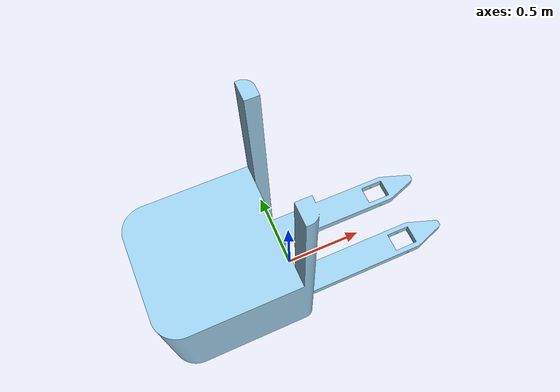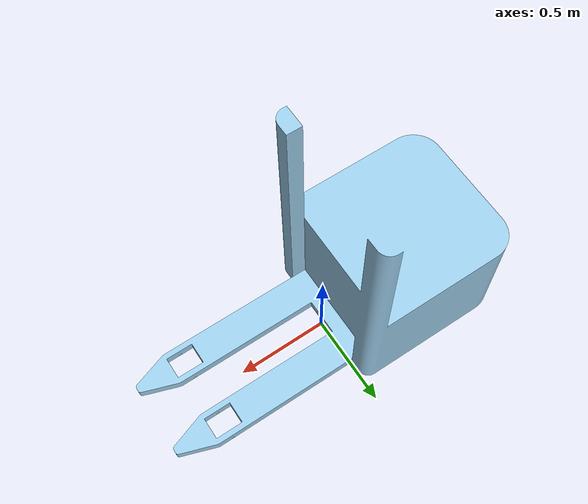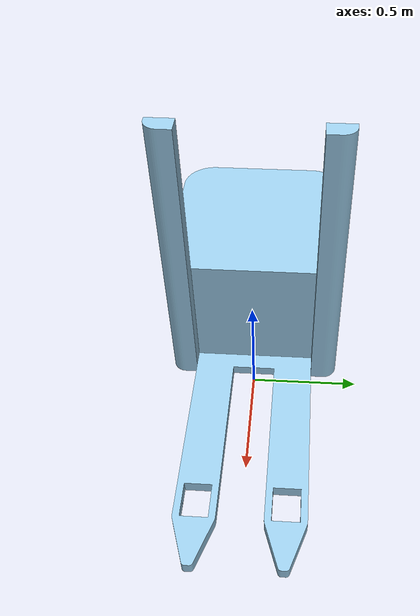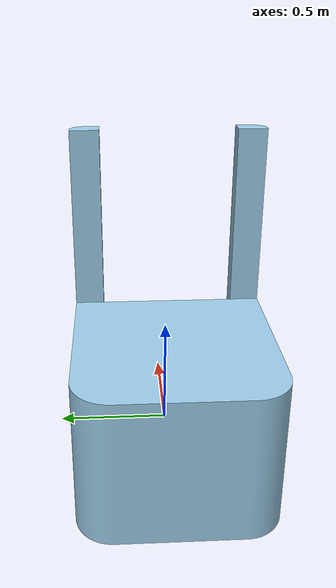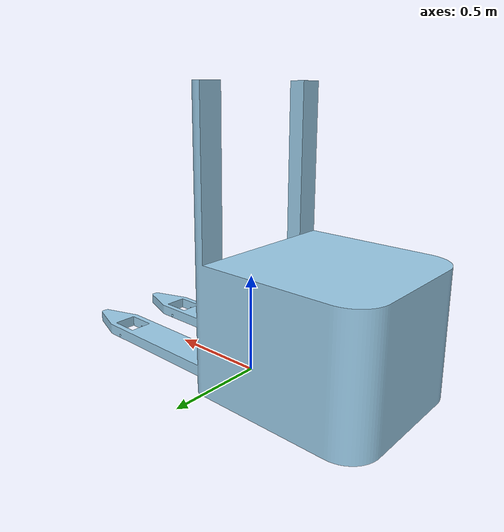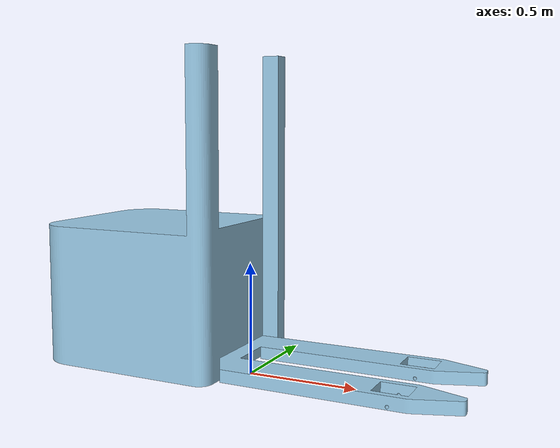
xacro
<?xml version="1.0" ?>

<robot name="EVX_14" xmlns:xacro="http://www.ros.org/wiki/xacro">

  <link name="base_footprint"/>

  <link name="base_link">
   <inertial>
    <origin xyz="-0.436 0 0.349" rpy="0 0 0"/>
     <xacro:box_inertia mass="200" x="0.872" y="0.8" z="0.618"/>
    <mass value= "200"/>
    </inertial>

    <collision>
      <origin rpy="0 0 0" xyz="0 0 0"/>
      <geometry>
        <mesh
          filename="$(find forklift_simulator)/urdf/EVX_14/meshes/EVX_14_base.dae" />
      </geometry>
    </collision>
    <visual>
      <origin rpy="0 0 0" xyz="0 0 0"/>
      <geometry>
        <mesh
        filename="$(find forklift_simulator)/urdf/EVX_14/meshes/EVX_14_base.dae" />
      </geometry>
    </visual>
  </link>

  <joint name="imu_joint" type="fixed">
    <parent link="base_link"/>
    <child link="imu_link"/>
    <origin xyz="0.0 0 0.068" rpy="0 0 0"/>
  </joint>

  <link name="imu_link"/>

  <joint name="base_joint" type="fixed">
    <parent link="base_footprint" />
    <child link="base_link" />
    <origin xyz="0.0 0 0.010" rpy="0 0 0" />
    <axis xyz="0 0 1" />
  </joint>

</robot>
